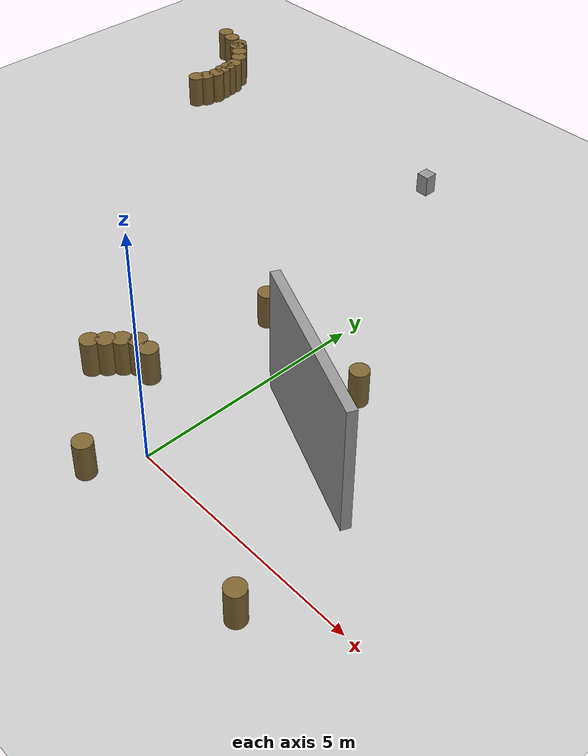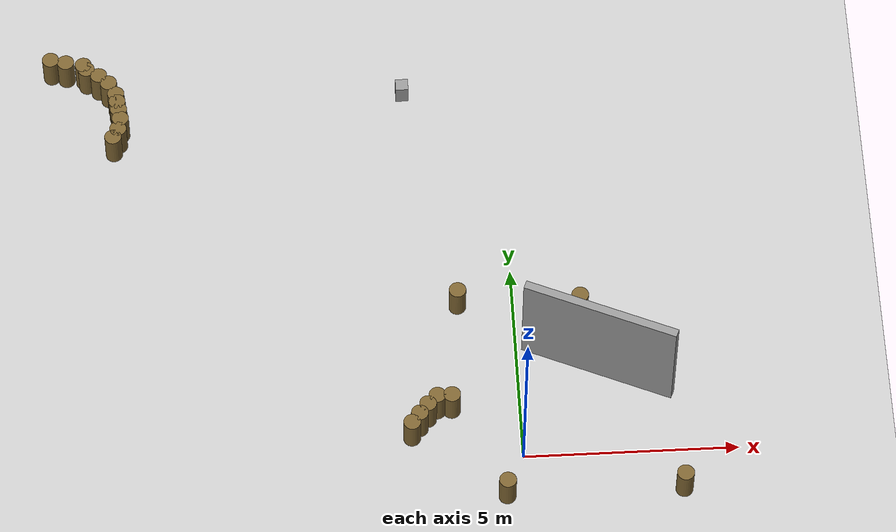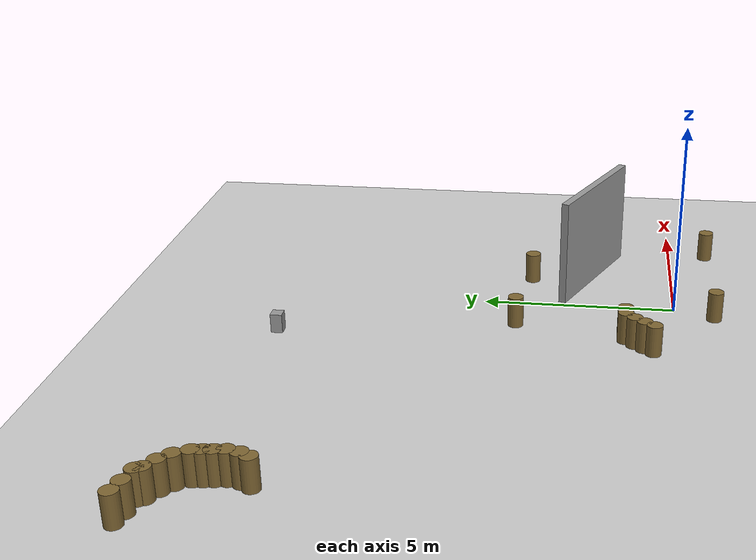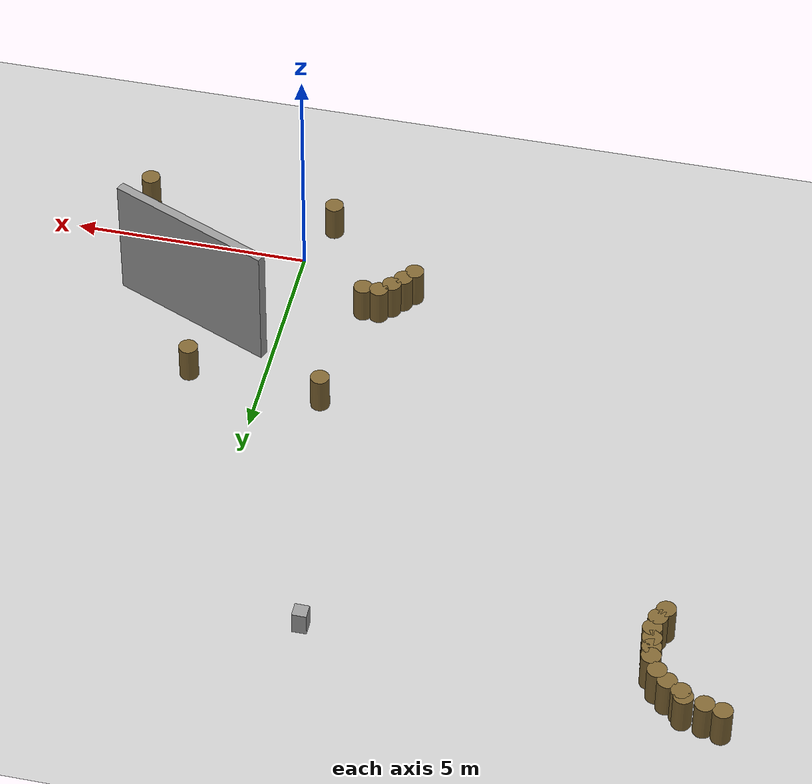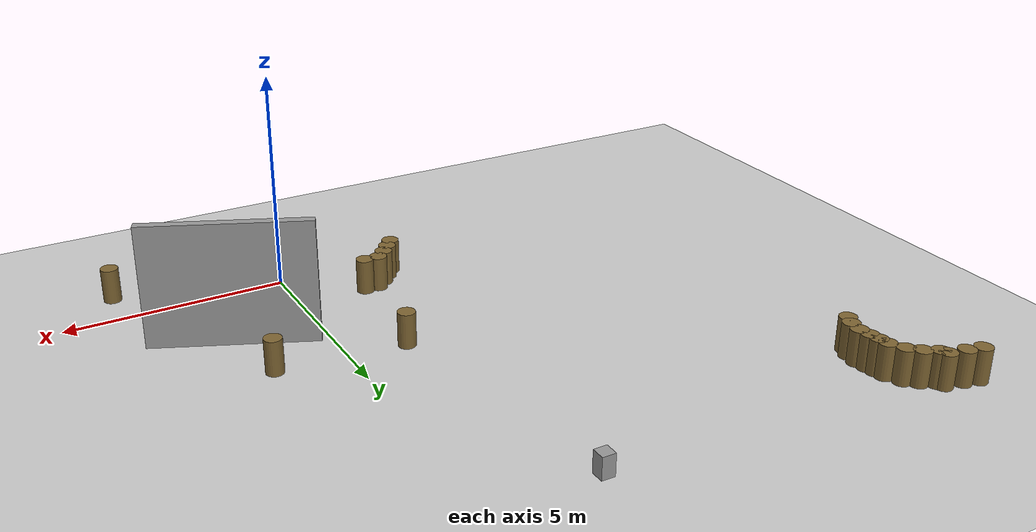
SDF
<sdf version="1.7">
 <world name="default">
  <model name="ground_plane">
   <static>1</static>
   <link name="link">
    <collision name="collision">
     <geometry><plane><normal>0 0 1</normal><size>100 100</size></plane></geometry>
     <surface><friction><ode><mu>100</mu><mu2>50</mu2></ode></friction></surface>
    </collision>
    <visual name="visual">
     <cast_shadows>0</cast_shadows>
     <geometry><plane><normal>0 0 1</normal><size>100 100</size></plane></geometry>
     <material>
      <script><uri>file://media/materials/scripts/gazebo.material</uri><name>Gazebo/Grey</name></script>
     </material>
    </visual>
   </link>
  </model>
  <model name="mini_cylinder_0_clone_0_clone_clone_clone_clone_0">
   <link name="link">
    <inertial>
     <mass>1</mass>
     <inertia><ixx>0.145833</ixx><ixy>0</ixy><ixz>0</ixz><iyy>0.145833</iyy><iyz>0</iyz><izz>0.125</izz></inertia>
    </inertial>
    <visual name="visual">
     <geometry><cylinder><radius>0.2</radius><length>0.8</length></cylinder></geometry>
     <material>
      <script><name>Gazebo/Grey</name><uri>file://media/materials/scripts/gazebo.material</uri></script>
      <shader type="vertex"><normal_map>__default__</normal_map></shader>
      <ambient>0.5 0.4 0.2 1</ambient>
      <diffuse>0.7 0.7 0.7 1</diffuse>
      <specular>0.01 0.01 0.01 1</specular>
      <emissive>0 0 0 1</emissive>
     </material>
    </visual>
    <collision name="collision">
     <geometry><cylinder><radius>0.2</radius><length>0.8</length></cylinder></geometry>
     <surface>
      <friction>
       <ode><mu>1</mu><mu2>1</mu2><fdir1>0 0 0</fdir1><slip1>0</slip1><slip2>0</slip2></ode>
       <torsional>
        <coefficient>1</coefficient>
        <patch_radius>0</patch_radius>
        <surface_radius>0</surface_radius>
        <use_patch_radius>1</use_patch_radius>
        <ode><slip>0</slip></ode>
       </torsional>
      </friction>
      <bounce><restitution_coefficient>0</restitution_coefficient><threshold>1e+06</threshold></bounce>
      <contact>
       <collide_without_contact>0</collide_without_contact>
       <collide_without_contact_bitmask>1</collide_without_contact_bitmask>
       <collide_bitmask>1</collide_bitmask>
       <ode>
        <soft_cfm>0</soft_cfm>
        <soft_erp>0.2</soft_erp>
        <kp>1e+13</kp>
        <kd>1</kd>
        <max_vel>0.01</max_vel>
        <min_depth>0</min_depth>
       </ode>
       <bullet>
        <split_impulse>1</split_impulse>
        <split_impulse_penetration_threshold>-0.01</split_impulse_penetration_threshold>
        <soft_cfm>0</soft_cfm>
        <soft_erp>0.2</soft_erp>
        <kp>1e+13</kp>
        <kd>1</kd>
       </bullet>
      </contact>
     </surface>
    </collision>
   </link>
   <static>1</static>
   <pose>-2.15189 1.08832 0.4 0 -0 0</pose>
  </model>
  <model name="mini_cylinder_0_clone_0_clone_clone_clone_clone_4">
   <link name="link">
    <inertial>
     <mass>1</mass>
     <inertia><ixx>0.145833</ixx><ixy>0</ixy><ixz>0</ixz><iyy>0.145833</iyy><iyz>0</iyz><izz>0.125</izz></inertia>
    </inertial>
    <visual name="visual">
     <geometry><cylinder><radius>0.2</radius><length>0.8</length></cylinder></geometry>
     <material>
      <script><name>Gazebo/Grey</name><uri>file://media/materials/scripts/gazebo.material</uri></script>
      <shader type="vertex"><normal_map>__default__</normal_map></shader>
      <ambient>0.5 0.4 0.2 1</ambient>
      <diffuse>0.7 0.7 0.7 1</diffuse>
      <specular>0.01 0.01 0.01 1</specular>
      <emissive>0 0 0 1</emissive>
     </material>
    </visual>
    <collision name="collision">
     <geometry><cylinder><radius>0.2</radius><length>0.8</length></cylinder></geometry>
     <surface>
      <friction>
       <ode><mu>1</mu><mu2>1</mu2><fdir1>0 0 0</fdir1><slip1>0</slip1><slip2>0</slip2></ode>
       <torsional>
        <coefficient>1</coefficient>
        <patch_radius>0</patch_radius>
        <surface_radius>0</surface_radius>
        <use_patch_radius>1</use_patch_radius>
        <ode><slip>0</slip></ode>
       </torsional>
      </friction>
      <bounce><restitution_coefficient>0</restitution_coefficient><threshold>1e+06</threshold></bounce>
      <contact>
       <collide_without_contact>0</collide_without_contact>
       <collide_without_contact_bitmask>1</collide_without_contact_bitmask>
       <collide_bitmask>1</collide_bitmask>
       <ode>
        <soft_cfm>0</soft_cfm>
        <soft_erp>0.2</soft_erp>
        <kp>1e+13</kp>
        <kd>1</kd>
        <max_vel>0.01</max_vel>
        <min_depth>0</min_depth>
       </ode>
       <bullet>
        <split_impulse>1</split_impulse>
        <split_impulse_penetration_threshold>-0.01</split_impulse_penetration_threshold>
        <soft_cfm>0</soft_cfm>
        <soft_erp>0.2</soft_erp>
        <kp>1e+13</kp>
        <kd>1</kd>
       </bullet>
      </contact>
     </surface>
    </collision>
   </link>
   <static>1</static>
   <pose>-1.92181 1.30291 0.4 0 -0 0</pose>
  </model>
  <model name="mini_cylinder_0_clone_0_clone_clone_clone_clone_10">
   <link name="link">
    <inertial>
     <mass>1</mass>
     <inertia><ixx>0.145833</ixx><ixy>0</ixy><ixz>0</ixz><iyy>0.145833</iyy><iyz>0</iyz><izz>0.125</izz></inertia>
    </inertial>
    <visual name="visual">
     <geometry><cylinder><radius>0.2</radius><length>0.8</length></cylinder></geometry>
     <material>
      <script><name>Gazebo/Grey</name><uri>file://media/materials/scripts/gazebo.material</uri></script>
      <shader type="vertex"><normal_map>__default__</normal_map></shader>
      <ambient>0.5 0.4 0.2 1</ambient>
      <diffuse>0.7 0.7 0.7 1</diffuse>
      <specular>0.01 0.01 0.01 1</specular>
      <emissive>0 0 0 1</emissive>
     </material>
    </visual>
    <collision name="collision">
     <geometry><cylinder><radius>0.2</radius><length>0.8</length></cylinder></geometry>
     <surface>
      <friction>
       <ode><mu>1</mu><mu2>1</mu2><fdir1>0 0 0</fdir1><slip1>0</slip1><slip2>0</slip2></ode>
       <torsional>
        <coefficient>1</coefficient>
        <patch_radius>0</patch_radius>
        <surface_radius>0</surface_radius>
        <use_patch_radius>1</use_patch_radius>
        <ode><slip>0</slip></ode>
       </torsional>
      </friction>
      <bounce><restitution_coefficient>0</restitution_coefficient><threshold>1e+06</threshold></bounce>
      <contact>
       <collide_without_contact>0</collide_without_contact>
       <collide_without_contact_bitmask>1</collide_without_contact_bitmask>
       <collide_bitmask>1</collide_bitmask>
       <ode>
        <soft_cfm>0</soft_cfm>
        <soft_erp>0.2</soft_erp>
        <kp>1e+13</kp>
        <kd>1</kd>
        <max_vel>0.01</max_vel>
        <min_depth>0</min_depth>
       </ode>
       <bullet>
        <split_impulse>1</split_impulse>
        <split_impulse_penetration_threshold>-0.01</split_impulse_penetration_threshold>
        <soft_cfm>0</soft_cfm>
        <soft_erp>0.2</soft_erp>
        <kp>1e+13</kp>
        <kd>1</kd>
       </bullet>
      </contact>
     </surface>
    </collision>
   </link>
   <static>1</static>
   <pose>3.64698 -1.03635 0.4 0 -0 0</pose>
  </model>
  <model name="mini_cylinder_0_clone_0_clone_clone_clone_clone_12">
   <link name="link">
    <inertial>
     <mass>1</mass>
     <inertia><ixx>0.145833</ixx><ixy>0</ixy><ixz>0</ixz><iyy>0.145833</iyy><iyz>0</iyz><izz>0.125</izz></inertia>
    </inertial>
    <visual name="visual">
     <geometry><cylinder><radius>0.2</radius><length>0.8</length></cylinder></geometry>
     <material>
      <script><name>Gazebo/Grey</name><uri>file://media/materials/scripts/gazebo.material</uri></script>
      <shader type="vertex"><normal_map>__default__</normal_map></shader>
      <ambient>0.5 0.4 0.2 1</ambient>
      <diffuse>0.7 0.7 0.7 1</diffuse>
      <specular>0.01 0.01 0.01 1</specular>
      <emissive>0 0 0 1</emissive>
     </material>
    </visual>
    <collision name="collision">
     <geometry><cylinder><radius>0.2</radius><length>0.8</length></cylinder></geometry>
     <surface>
      <friction>
       <ode><mu>1</mu><mu2>1</mu2><fdir1>0 0 0</fdir1><slip1>0</slip1><slip2>0</slip2></ode>
       <torsional>
        <coefficient>1</coefficient>
        <patch_radius>0</patch_radius>
        <surface_radius>0</surface_radius>
        <use_patch_radius>1</use_patch_radius>
        <ode><slip>0</slip></ode>
       </torsional>
      </friction>
      <bounce><restitution_coefficient>0</restitution_coefficient><threshold>1e+06</threshold></bounce>
      <contact>
       <collide_without_contact>0</collide_without_contact>
       <collide_without_contact_bitmask>1</collide_without_contact_bitmask>
       <collide_bitmask>1</collide_bitmask>
       <ode>
        <soft_cfm>0</soft_cfm>
        <soft_erp>0.2</soft_erp>
        <kp>1e+13</kp>
        <kd>1</kd>
        <max_vel>0.01</max_vel>
        <min_depth>0</min_depth>
       </ode>
       <bullet>
        <split_impulse>1</split_impulse>
        <split_impulse_penetration_threshold>-0.01</split_impulse_penetration_threshold>
        <soft_cfm>0</soft_cfm>
        <soft_erp>0.2</soft_erp>
        <kp>1e+13</kp>
        <kd>1</kd>
       </bullet>
      </contact>
     </surface>
    </collision>
   </link>
   <static>1</static>
   <pose>1.56031 3.83174 0.4 0 -0 0</pose>
  </model>
  <model name="mini_cylinder_0_clone_0_clone_clone_clone_clone_13">
   <link name="link">
    <inertial>
     <mass>1</mass>
     <inertia><ixx>0.145833</ixx><ixy>0</ixy><ixz>0</ixz><iyy>0.145833</iyy><iyz>0</iyz><izz>0.125</izz></inertia>
    </inertial>
    <visual name="visual">
     <geometry><cylinder><radius>0.2</radius><length>0.8</length></cylinder></geometry>
     <material>
      <script><name>Gazebo/Grey</name><uri>file://media/materials/scripts/gazebo.material</uri></script>
      <shader type="vertex"><normal_map>__default__</normal_map></shader>
      <ambient>0.5 0.4 0.2 1</ambient>
      <diffuse>0.7 0.7 0.7 1</diffuse>
      <specular>0.01 0.01 0.01 1</specular>
      <emissive>0 0 0 1</emissive>
     </material>
    </visual>
    <collision name="collision">
     <geometry><cylinder><radius>0.2</radius><length>0.8</length></cylinder></geometry>
     <surface>
      <friction>
       <ode><mu>1</mu><mu2>1</mu2><fdir1>0 0 0</fdir1><slip1>0</slip1><slip2>0</slip2></ode>
       <torsional>
        <coefficient>1</coefficient>
        <patch_radius>0</patch_radius>
        <surface_radius>0</surface_radius>
        <use_patch_radius>1</use_patch_radius>
        <ode><slip>0</slip></ode>
       </torsional>
      </friction>
      <bounce><restitution_coefficient>0</restitution_coefficient><threshold>1e+06</threshold></bounce>
      <contact>
       <collide_without_contact>0</collide_without_contact>
       <collide_without_contact_bitmask>1</collide_without_contact_bitmask>
       <collide_bitmask>1</collide_bitmask>
       <ode>
        <soft_cfm>0</soft_cfm>
        <soft_erp>0.2</soft_erp>
        <kp>1e+13</kp>
        <kd>1</kd>
        <max_vel>0.01</max_vel>
        <min_depth>0</min_depth>
       </ode>
       <bullet>
        <split_impulse>1</split_impulse>
        <split_impulse_penetration_threshold>-0.01</split_impulse_penetration_threshold>
        <soft_cfm>0</soft_cfm>
        <soft_erp>0.2</soft_erp>
        <kp>1e+13</kp>
        <kd>1</kd>
       </bullet>
      </contact>
     </surface>
    </collision>
   </link>
   <static>1</static>
   <pose>-1.29879 4.10222 0.4 0 -0 0</pose>
  </model>
  <model name="mini_cylinder_0_clone_0_clone_clone_clone_clone_3_clone_20_clone_67">
   <link name="link">
    <inertial>
     <mass>1</mass>
     <inertia><ixx>0.145833</ixx><ixy>0</ixy><ixz>0</ixz><iyy>0.145833</iyy><iyz>0</iyz><izz>0.125</izz></inertia>
    </inertial>
    <visual name="visual">
     <geometry><cylinder><radius>0.2</radius><length>0.8</length></cylinder></geometry>
     <material>
      <script><name>Gazebo/Grey</name><uri>file://media/materials/scripts/gazebo.material</uri></script>
      <shader type="vertex"><normal_map>__default__</normal_map></shader>
      <ambient>0.5 0.4 0.2 1</ambient>
      <diffuse>0.7 0.7 0.7 1</diffuse>
      <specular>0.01 0.01 0.01 1</specular>
      <emissive>0 0 0 1</emissive>
     </material>
    </visual>
    <collision name="collision">
     <geometry><cylinder><radius>0.2</radius><length>0.8</length></cylinder></geometry>
     <surface>
      <friction>
       <ode><mu>1</mu><mu2>1</mu2><fdir1>0 0 0</fdir1><slip1>0</slip1><slip2>0</slip2></ode>
       <torsional>
        <coefficient>1</coefficient>
        <patch_radius>0</patch_radius>
        <surface_radius>0</surface_radius>
        <use_patch_radius>1</use_patch_radius>
        <ode><slip>0</slip></ode>
       </torsional>
      </friction>
      <bounce><restitution_coefficient>0</restitution_coefficient><threshold>1e+06</threshold></bounce>
      <contact>
       <collide_without_contact>0</collide_without_contact>
       <collide_without_contact_bitmask>1</collide_without_contact_bitmask>
       <collide_bitmask>1</collide_bitmask>
       <ode>
        <soft_cfm>0</soft_cfm>
        <soft_erp>0.2</soft_erp>
        <kp>1e+13</kp>
        <kd>1</kd>
        <max_vel>0.01</max_vel>
        <min_depth>0</min_depth>
       </ode>
       <bullet>
        <split_impulse>1</split_impulse>
        <split_impulse_penetration_threshold>-0.01</split_impulse_penetration_threshold>
        <soft_cfm>0</soft_cfm>
        <soft_erp>0.2</soft_erp>
        <kp>1e+13</kp>
        <kd>1</kd>
       </bullet>
      </contact>
     </surface>
    </collision>
   </link>
   <static>1</static>
   <pose>-9.17055 10.0028 0.4 0 -0 0</pose>
  </model>
  <model name="mini_cylinder_0_clone_0_clone_clone_clone_clone_3_clone_20_clone_68">
   <link name="link">
    <inertial>
     <mass>1</mass>
     <inertia><ixx>0.145833</ixx><ixy>0</ixy><ixz>0</ixz><iyy>0.145833</iyy><iyz>0</iyz><izz>0.125</izz></inertia>
    </inertial>
    <visual name="visual">
     <geometry><cylinder><radius>0.2</radius><length>0.8</length></cylinder></geometry>
     <material>
      <script><name>Gazebo/Grey</name><uri>file://media/materials/scripts/gazebo.material</uri></script>
      <shader type="vertex"><normal_map>__default__</normal_map></shader>
      <ambient>0.5 0.4 0.2 1</ambient>
      <diffuse>0.7 0.7 0.7 1</diffuse>
      <specular>0.01 0.01 0.01 1</specular>
      <emissive>0 0 0 1</emissive>
     </material>
    </visual>
    <collision name="collision">
     <geometry><cylinder><radius>0.2</radius><length>0.8</length></cylinder></geometry>
     <surface>
      <friction>
       <ode><mu>1</mu><mu2>1</mu2><fdir1>0 0 0</fdir1><slip1>0</slip1><slip2>0</slip2></ode>
       <torsional>
        <coefficient>1</coefficient>
        <patch_radius>0</patch_radius>
        <surface_radius>0</surface_radius>
        <use_patch_radius>1</use_patch_radius>
        <ode><slip>0</slip></ode>
       </torsional>
      </friction>
      <bounce><restitution_coefficient>0</restitution_coefficient><threshold>1e+06</threshold></bounce>
      <contact>
       <collide_without_contact>0</collide_without_contact>
       <collide_without_contact_bitmask>1</collide_without_contact_bitmask>
       <collide_bitmask>1</collide_bitmask>
       <ode>
        <soft_cfm>0</soft_cfm>
        <soft_erp>0.2</soft_erp>
        <kp>1e+13</kp>
        <kd>1</kd>
        <max_vel>0.01</max_vel>
        <min_depth>0</min_depth>
       </ode>
       <bullet>
        <split_impulse>1</split_impulse>
        <split_impulse_penetration_threshold>-0.01</split_impulse_penetration_threshold>
        <soft_cfm>0</soft_cfm>
        <soft_erp>0.2</soft_erp>
        <kp>1e+13</kp>
        <kd>1</kd>
       </bullet>
      </contact>
     </surface>
    </collision>
   </link>
   <static>1</static>
   <pose>-9.33863 10.3265 0.4 0 -0 0</pose>
  </model>
  <model name="mini_cylinder_0_clone_0_clone_clone_clone_clone_3_clone_20_clone_69">
   <link name="link">
    <inertial>
     <mass>1</mass>
     <inertia><ixx>0.145833</ixx><ixy>0</ixy><ixz>0</ixz><iyy>0.145833</iyy><iyz>0</iyz><izz>0.125</izz></inertia>
    </inertial>
    <visual name="visual">
     <geometry><cylinder><radius>0.2</radius><length>0.8</length></cylinder></geometry>
     <material>
      <script><name>Gazebo/Grey</name><uri>file://media/materials/scripts/gazebo.material</uri></script>
      <shader type="vertex"><normal_map>__default__</normal_map></shader>
      <ambient>0.5 0.4 0.2 1</ambient>
      <diffuse>0.7 0.7 0.7 1</diffuse>
      <specular>0.01 0.01 0.01 1</specular>
      <emissive>0 0 0 1</emissive>
     </material>
    </visual>
    <collision name="collision">
     <geometry><cylinder><radius>0.2</radius><length>0.8</length></cylinder></geometry>
     <surface>
      <friction>
       <ode><mu>1</mu><mu2>1</mu2><fdir1>0 0 0</fdir1><slip1>0</slip1><slip2>0</slip2></ode>
       <torsional>
        <coefficient>1</coefficient>
        <patch_radius>0</patch_radius>
        <surface_radius>0</surface_radius>
        <use_patch_radius>1</use_patch_radius>
        <ode><slip>0</slip></ode>
       </torsional>
      </friction>
      <bounce><restitution_coefficient>0</restitution_coefficient><threshold>1e+06</threshold></bounce>
      <contact>
       <collide_without_contact>0</collide_without_contact>
       <collide_without_contact_bitmask>1</collide_without_contact_bitmask>
       <collide_bitmask>1</collide_bitmask>
       <ode>
        <soft_cfm>0</soft_cfm>
        <soft_erp>0.2</soft_erp>
        <kp>1e+13</kp>
        <kd>1</kd>
        <max_vel>0.01</max_vel>
        <min_depth>0</min_depth>
       </ode>
       <bullet>
        <split_impulse>1</split_impulse>
        <split_impulse_penetration_threshold>-0.01</split_impulse_penetration_threshold>
        <soft_cfm>0</soft_cfm>
        <soft_erp>0.2</soft_erp>
        <kp>1e+13</kp>
        <kd>1</kd>
       </bullet>
      </contact>
     </surface>
    </collision>
   </link>
   <static>1</static>
   <pose>-9.57017 10.5508 0.4 0 -0 0</pose>
  </model>
  <model name="mini_cylinder_0_clone_0_clone_clone_clone_clone_3_clone_20_clone_70">
   <link name="link">
    <inertial>
     <mass>1</mass>
     <inertia><ixx>0.145833</ixx><ixy>0</ixy><ixz>0</ixz><iyy>0.145833</iyy><iyz>0</iyz><izz>0.125</izz></inertia>
    </inertial>
    <visual name="visual">
     <geometry><cylinder><radius>0.2</radius><length>0.8</length></cylinder></geometry>
     <material>
      <script><name>Gazebo/Grey</name><uri>file://media/materials/scripts/gazebo.material</uri></script>
      <shader type="vertex"><normal_map>__default__</normal_map></shader>
      <ambient>0.5 0.4 0.2 1</ambient>
      <diffuse>0.7 0.7 0.7 1</diffuse>
      <specular>0.01 0.01 0.01 1</specular>
      <emissive>0 0 0 1</emissive>
     </material>
    </visual>
    <collision name="collision">
     <geometry><cylinder><radius>0.2</radius><length>0.8</length></cylinder></geometry>
     <surface>
      <friction>
       <ode><mu>1</mu><mu2>1</mu2><fdir1>0 0 0</fdir1><slip1>0</slip1><slip2>0</slip2></ode>
       <torsional>
        <coefficient>1</coefficient>
        <patch_radius>0</patch_radius>
        <surface_radius>0</surface_radius>
        <use_patch_radius>1</use_patch_radius>
        <ode><slip>0</slip></ode>
       </torsional>
      </friction>
      <bounce><restitution_coefficient>0</restitution_coefficient><threshold>1e+06</threshold></bounce>
      <contact>
       <collide_without_contact>0</collide_without_contact>
       <collide_without_contact_bitmask>1</collide_without_contact_bitmask>
       <collide_bitmask>1</collide_bitmask>
       <ode>
        <soft_cfm>0</soft_cfm>
        <soft_erp>0.2</soft_erp>
        <kp>1e+13</kp>
        <kd>1</kd>
        <max_vel>0.01</max_vel>
        <min_depth>0</min_depth>
       </ode>
       <bullet>
        <split_impulse>1</split_impulse>
        <split_impulse_penetration_threshold>-0.01</split_impulse_penetration_threshold>
        <soft_cfm>0</soft_cfm>
        <soft_erp>0.2</soft_erp>
        <kp>1e+13</kp>
        <kd>1</kd>
       </bullet>
      </contact>
     </surface>
    </collision>
   </link>
   <static>1</static>
   <pose>-9.93318 10.8706 0.4 0 -0 0</pose>
  </model>
  <model name="mini_cylinder_0_clone_0_clone_clone_clone_clone_3_clone_20_clone_71">
   <link name="link">
    <inertial>
     <mass>1</mass>
     <inertia><ixx>0.145833</ixx><ixy>0</ixy><ixz>0</ixz><iyy>0.145833</iyy><iyz>0</iyz><izz>0.125</izz></inertia>
    </inertial>
    <visual name="visual">
     <geometry><cylinder><radius>0.2</radius><length>0.8</length></cylinder></geometry>
     <material>
      <script><name>Gazebo/Grey</name><uri>file://media/materials/scripts/gazebo.material</uri></script>
      <shader type="vertex"><normal_map>__default__</normal_map></shader>
      <ambient>0.5 0.4 0.2 1</ambient>
      <diffuse>0.7 0.7 0.7 1</diffuse>
      <specular>0.01 0.01 0.01 1</specular>
      <emissive>0 0 0 1</emissive>
     </material>
    </visual>
    <collision name="collision">
     <geometry><cylinder><radius>0.2</radius><length>0.8</length></cylinder></geometry>
     <surface>
      <friction>
       <ode><mu>1</mu><mu2>1</mu2><fdir1>0 0 0</fdir1><slip1>0</slip1><slip2>0</slip2></ode>
       <torsional>
        <coefficient>1</coefficient>
        <patch_radius>0</patch_radius>
        <surface_radius>0</surface_radius>
        <use_patch_radius>1</use_patch_radius>
        <ode><slip>0</slip></ode>
       </torsional>
      </friction>
      <bounce><restitution_coefficient>0</restitution_coefficient><threshold>1e+06</threshold></bounce>
      <contact>
       <collide_without_contact>0</collide_without_contact>
       <collide_without_contact_bitmask>1</collide_without_contact_bitmask>
       <collide_bitmask>1</collide_bitmask>
       <ode>
        <soft_cfm>0</soft_cfm>
        <soft_erp>0.2</soft_erp>
        <kp>1e+13</kp>
        <kd>1</kd>
        <max_vel>0.01</max_vel>
        <min_depth>0</min_depth>
       </ode>
       <bullet>
        <split_impulse>1</split_impulse>
        <split_impulse_penetration_threshold>-0.01</split_impulse_penetration_threshold>
        <soft_cfm>0</soft_cfm>
        <soft_erp>0.2</soft_erp>
        <kp>1e+13</kp>
        <kd>1</kd>
       </bullet>
      </contact>
     </surface>
    </collision>
   </link>
   <static>1</static>
   <pose>-9.86597 10.7414 0.4 0 -0 0</pose>
  </model>
  <model name="mini_cylinder_0_clone_0_clone_clone_clone_clone_3_clone_20_clone_72">
   <link name="link">
    <inertial>
     <mass>1</mass>
     <inertia><ixx>0.145833</ixx><ixy>0</ixy><ixz>0</ixz><iyy>0.145833</iyy><iyz>0</iyz><izz>0.125</izz></inertia>
    </inertial>
    <visual name="visual">
     <geometry><cylinder><radius>0.2</radius><length>0.8</length></cylinder></geometry>
     <material>
      <script><name>Gazebo/Grey</name><uri>file://media/materials/scripts/gazebo.material</uri></script>
      <shader type="vertex"><normal_map>__default__</normal_map></shader>
      <ambient>0.5 0.4 0.2 1</ambient>
      <diffuse>0.7 0.7 0.7 1</diffuse>
      <specular>0.01 0.01 0.01 1</specular>
      <emissive>0 0 0 1</emissive>
     </material>
    </visual>
    <collision name="collision">
     <geometry><cylinder><radius>0.2</radius><length>0.8</length></cylinder></geometry>
     <surface>
      <friction>
       <ode><mu>1</mu><mu2>1</mu2><fdir1>0 0 0</fdir1><slip1>0</slip1><slip2>0</slip2></ode>
       <torsional>
        <coefficient>1</coefficient>
        <patch_radius>0</patch_radius>
        <surface_radius>0</surface_radius>
        <use_patch_radius>1</use_patch_radius>
        <ode><slip>0</slip></ode>
       </torsional>
      </friction>
      <bounce><restitution_coefficient>0</restitution_coefficient><threshold>1e+06</threshold></bounce>
      <contact>
       <collide_without_contact>0</collide_without_contact>
       <collide_without_contact_bitmask>1</collide_without_contact_bitmask>
       <collide_bitmask>1</collide_bitmask>
       <ode>
        <soft_cfm>0</soft_cfm>
        <soft_erp>0.2</soft_erp>
        <kp>1e+13</kp>
        <kd>1</kd>
        <max_vel>0.01</max_vel>
        <min_depth>0</min_depth>
       </ode>
       <bullet>
        <split_impulse>1</split_impulse>
        <split_impulse_penetration_threshold>-0.01</split_impulse_penetration_threshold>
        <soft_cfm>0</soft_cfm>
        <soft_erp>0.2</soft_erp>
        <kp>1e+13</kp>
        <kd>1</kd>
       </bullet>
      </contact>
     </surface>
    </collision>
   </link>
   <static>1</static>
   <pose>-10.3575 10.9616 0.4 0 -0 0</pose>
  </model>
  <model name="mini_cylinder_0_clone_0_clone_clone_clone_clone_3_clone_20_clone_73">
   <link name="link">
    <inertial>
     <mass>1</mass>
     <inertia><ixx>0.145833</ixx><ixy>0</ixy><ixz>0</ixz><iyy>0.145833</iyy><iyz>0</iyz><izz>0.125</izz></inertia>
    </inertial>
    <visual name="visual">
     <geometry><cylinder><radius>0.2</radius><length>0.8</length></cylinder></geometry>
     <material>
      <script><name>Gazebo/Grey</name><uri>file://media/materials/scripts/gazebo.material</uri></script>
      <shader type="vertex"><normal_map>__default__</normal_map></shader>
      <ambient>0.5 0.4 0.2 1</ambient>
      <diffuse>0.7 0.7 0.7 1</diffuse>
      <specular>0.01 0.01 0.01 1</specular>
      <emissive>0 0 0 1</emissive>
     </material>
    </visual>
    <collision name="collision">
     <geometry><cylinder><radius>0.2</radius><length>0.8</length></cylinder></geometry>
     <surface>
      <friction>
       <ode><mu>1</mu><mu2>1</mu2><fdir1>0 0 0</fdir1><slip1>0</slip1><slip2>0</slip2></ode>
       <torsional>
        <coefficient>1</coefficient>
        <patch_radius>0</patch_radius>
        <surface_radius>0</surface_radius>
        <use_patch_radius>1</use_patch_radius>
        <ode><slip>0</slip></ode>
       </torsional>
      </friction>
      <bounce><restitution_coefficient>0</restitution_coefficient><threshold>1e+06</threshold></bounce>
      <contact>
       <collide_without_contact>0</collide_without_contact>
       <collide_without_contact_bitmask>1</collide_without_contact_bitmask>
       <collide_bitmask>1</collide_bitmask>
       <ode>
        <soft_cfm>0</soft_cfm>
        <soft_erp>0.2</soft_erp>
        <kp>1e+13</kp>
        <kd>1</kd>
        <max_vel>0.01</max_vel>
        <min_depth>0</min_depth>
       </ode>
       <bullet>
        <split_impulse>1</split_impulse>
        <split_impulse_penetration_threshold>-0.01</split_impulse_penetration_threshold>
        <soft_cfm>0</soft_cfm>
        <soft_erp>0.2</soft_erp>
        <kp>1e+13</kp>
        <kd>1</kd>
       </bullet>
      </contact>
     </surface>
    </collision>
   </link>
   <static>1</static>
   <pose>-10.7169 11.0528 0.4 0 -0 0</pose>
  </model>
  <model name="mini_cylinder_0_clone_0_clone_clone_clone_clone_3_clone_20_clone_97">
   <link name="link">
    <inertial>
     <mass>1</mass>
     <inertia><ixx>0.145833</ixx><ixy>0</ixy><ixz>0</ixz><iyy>0.145833</iyy><iyz>0</iyz><izz>0.125</izz></inertia>
    </inertial>
    <visual name="visual">
     <geometry><cylinder><radius>0.2</radius><length>0.8</length></cylinder></geometry>
     <material>
      <script><name>Gazebo/Grey</name><uri>file://media/materials/scripts/gazebo.material</uri></script>
      <shader type="vertex"><normal_map>__default__</normal_map></shader>
      <ambient>0.5 0.4 0.2 1</ambient>
      <diffuse>0.7 0.7 0.7 1</diffuse>
      <specular>0.01 0.01 0.01 1</specular>
      <emissive>0 0 0 1</emissive>
     </material>
    </visual>
    <collision name="collision">
     <geometry><cylinder><radius>0.2</radius><length>0.8</length></cylinder></geometry>
     <surface>
      <friction>
       <ode><mu>1</mu><mu2>1</mu2><fdir1>0 0 0</fdir1><slip1>0</slip1><slip2>0</slip2></ode>
       <torsional>
        <coefficient>1</coefficient>
        <patch_radius>0</patch_radius>
        <surface_radius>0</surface_radius>
        <use_patch_radius>1</use_patch_radius>
        <ode><slip>0</slip></ode>
       </torsional>
      </friction>
      <bounce><restitution_coefficient>0</restitution_coefficient><threshold>1e+06</threshold></bounce>
      <contact>
       <collide_without_contact>0</collide_without_contact>
       <collide_without_contact_bitmask>1</collide_without_contact_bitmask>
       <collide_bitmask>1</collide_bitmask>
       <ode>
        <soft_cfm>0</soft_cfm>
        <soft_erp>0.2</soft_erp>
        <kp>1e+13</kp>
        <kd>1</kd>
        <max_vel>0.01</max_vel>
        <min_depth>0</min_depth>
       </ode>
       <bullet>
        <split_impulse>1</split_impulse>
        <split_impulse_penetration_threshold>-0.01</split_impulse_penetration_threshold>
        <soft_cfm>0</soft_cfm>
        <soft_erp>0.2</soft_erp>
        <kp>1e+13</kp>
        <kd>1</kd>
       </bullet>
      </contact>
     </surface>
    </collision>
   </link>
   <static>1</static>
   <pose>-9.1451 9.78077 0.4 0 -0 0</pose>
  </model>
  <model name="mini_cylinder_0_clone_0_clone_clone_clone_clone_3_clone_20_clone_98">
   <link name="link">
    <inertial>
     <mass>1</mass>
     <inertia><ixx>0.145833</ixx><ixy>0</ixy><ixz>0</ixz><iyy>0.145833</iyy><iyz>0</iyz><izz>0.125</izz></inertia>
    </inertial>
    <visual name="visual">
     <geometry><cylinder><radius>0.2</radius><length>0.8</length></cylinder></geometry>
     <material>
      <script><name>Gazebo/Grey</name><uri>file://media/materials/scripts/gazebo.material</uri></script>
      <shader type="vertex"><normal_map>__default__</normal_map></shader>
      <ambient>0.5 0.4 0.2 1</ambient>
      <diffuse>0.7 0.7 0.7 1</diffuse>
      <specular>0.01 0.01 0.01 1</specular>
      <emissive>0 0 0 1</emissive>
     </material>
    </visual>
    <collision name="collision">
     <geometry><cylinder><radius>0.2</radius><length>0.8</length></cylinder></geometry>
     <surface>
      <friction>
       <ode><mu>1</mu><mu2>1</mu2><fdir1>0 0 0</fdir1><slip1>0</slip1><slip2>0</slip2></ode>
       <torsional>
        <coefficient>1</coefficient>
        <patch_radius>0</patch_radius>
        <surface_radius>0</surface_radius>
        <use_patch_radius>1</use_patch_radius>
        <ode><slip>0</slip></ode>
       </torsional>
      </friction>
      <bounce><restitution_coefficient>0</restitution_coefficient><threshold>1e+06</threshold></bounce>
      <contact>
       <collide_without_contact>0</collide_without_contact>
       <collide_without_contact_bitmask>1</collide_without_contact_bitmask>
       <collide_bitmask>1</collide_bitmask>
       <ode>
        <soft_cfm>0</soft_cfm>
        <soft_erp>0.2</soft_erp>
        <kp>1e+13</kp>
        <kd>1</kd>
        <max_vel>0.01</max_vel>
        <min_depth>0</min_depth>
       </ode>
       <bullet>
        <split_impulse>1</split_impulse>
        <split_impulse_penetration_threshold>-0.01</split_impulse_penetration_threshold>
        <soft_cfm>0</soft_cfm>
        <soft_erp>0.2</soft_erp>
        <kp>1e+13</kp>
        <kd>1</kd>
       </bullet>
      </contact>
     </surface>
    </collision>
   </link>
   <static>1</static>
   <pose>-9.11435 9.55868 0.4 0 -0 0</pose>
  </model>
  <model name="mini_cylinder_0_clone_0_clone_clone_clone_clone_3_clone_20_clone_99">
   <link name="link">
    <inertial>
     <mass>1</mass>
     <inertia><ixx>0.145833</ixx><ixy>0</ixy><ixz>0</ixz><iyy>0.145833</iyy><iyz>0</iyz><izz>0.125</izz></inertia>
    </inertial>
    <visual name="visual">
     <geometry><cylinder><radius>0.2</radius><length>0.8</length></cylinder></geometry>
     <material>
      <script><name>Gazebo/Grey</name><uri>file://media/materials/scripts/gazebo.material</uri></script>
      <shader type="vertex"><normal_map>__default__</normal_map></shader>
      <ambient>0.5 0.4 0.2 1</ambient>
      <diffuse>0.7 0.7 0.7 1</diffuse>
      <specular>0.01 0.01 0.01 1</specular>
      <emissive>0 0 0 1</emissive>
     </material>
    </visual>
    <collision name="collision">
     <geometry><cylinder><radius>0.2</radius><length>0.8</length></cylinder></geometry>
     <surface>
      <friction>
       <ode><mu>1</mu><mu2>1</mu2><fdir1>0 0 0</fdir1><slip1>0</slip1><slip2>0</slip2></ode>
       <torsional>
        <coefficient>1</coefficient>
        <patch_radius>0</patch_radius>
        <surface_radius>0</surface_radius>
        <use_patch_radius>1</use_patch_radius>
        <ode><slip>0</slip></ode>
       </torsional>
      </friction>
      <bounce><restitution_coefficient>0</restitution_coefficient><threshold>1e+06</threshold></bounce>
      <contact>
       <collide_without_contact>0</collide_without_contact>
       <collide_without_contact_bitmask>1</collide_without_contact_bitmask>
       <collide_bitmask>1</collide_bitmask>
       <ode>
        <soft_cfm>0</soft_cfm>
        <soft_erp>0.2</soft_erp>
        <kp>1e+13</kp>
        <kd>1</kd>
        <max_vel>0.01</max_vel>
        <min_depth>0</min_depth>
       </ode>
       <bullet>
        <split_impulse>1</split_impulse>
        <split_impulse_penetration_threshold>-0.01</split_impulse_penetration_threshold>
        <soft_cfm>0</soft_cfm>
        <soft_erp>0.2</soft_erp>
        <kp>1e+13</kp>
        <kd>1</kd>
       </bullet>
      </contact>
     </surface>
    </collision>
   </link>
   <static>1</static>
   <pose>-9.07853 9.29885 0.4 0 -0 0</pose>
  </model>
  <model name="mini_cylinder_0_clone_0_clone_clone_clone_clone_3_clone_20_clone_100">
   <link name="link">
    <inertial>
     <mass>1</mass>
     <inertia><ixx>0.145833</ixx><ixy>0</ixy><ixz>0</ixz><iyy>0.145833</iyy><iyz>0</iyz><izz>0.125</izz></inertia>
    </inertial>
    <visual name="visual">
     <geometry><cylinder><radius>0.2</radius><length>0.8</length></cylinder></geometry>
     <material>
      <script><name>Gazebo/Grey</name><uri>file://media/materials/scripts/gazebo.material</uri></script>
      <shader type="vertex"><normal_map>__default__</normal_map></shader>
      <ambient>0.5 0.4 0.2 1</ambient>
      <diffuse>0.7 0.7 0.7 1</diffuse>
      <specular>0.01 0.01 0.01 1</specular>
      <emissive>0 0 0 1</emissive>
     </material>
    </visual>
    <collision name="collision">
     <geometry><cylinder><radius>0.2</radius><length>0.8</length></cylinder></geometry>
     <surface>
      <friction>
       <ode><mu>1</mu><mu2>1</mu2><fdir1>0 0 0</fdir1><slip1>0</slip1><slip2>0</slip2></ode>
       <torsional>
        <coefficient>1</coefficient>
        <patch_radius>0</patch_radius>
        <surface_radius>0</surface_radius>
        <use_patch_radius>1</use_patch_radius>
        <ode><slip>0</slip></ode>
       </torsional>
      </friction>
      <bounce><restitution_coefficient>0</restitution_coefficient><threshold>1e+06</threshold></bounce>
      <contact>
       <collide_without_contact>0</collide_without_contact>
       <collide_without_contact_bitmask>1</collide_without_contact_bitmask>
       <collide_bitmask>1</collide_bitmask>
       <ode>
        <soft_cfm>0</soft_cfm>
        <soft_erp>0.2</soft_erp>
        <kp>1e+13</kp>
        <kd>1</kd>
        <max_vel>0.01</max_vel>
        <min_depth>0</min_depth>
       </ode>
       <bullet>
        <split_impulse>1</split_impulse>
        <split_impulse_penetration_threshold>-0.01</split_impulse_penetration_threshold>
        <soft_cfm>0</soft_cfm>
        <soft_erp>0.2</soft_erp>
        <kp>1e+13</kp>
        <kd>1</kd>
       </bullet>
      </contact>
     </surface>
    </collision>
   </link>
   <static>1</static>
   <pose>-9.13853 9.0047 0.4 0 -0 0</pose>
  </model>
  <model name="mini_cylinder_0_clone_0_clone_clone_clone_clone_3_clone_20_clone_101">
   <link name="link">
    <inertial>
     <mass>1</mass>
     <inertia><ixx>0.145833</ixx><ixy>0</ixy><ixz>0</ixz><iyy>0.145833</iyy><iyz>0</iyz><izz>0.125</izz></inertia>
    </inertial>
    <visual name="visual">
     <geometry><cylinder><radius>0.2</radius><length>0.8</length></cylinder></geometry>
     <material>
      <script><name>Gazebo/Grey</name><uri>file://media/materials/scripts/gazebo.material</uri></script>
      <shader type="vertex"><normal_map>__default__</normal_map></shader>
      <ambient>0.5 0.4 0.2 1</ambient>
      <diffuse>0.7 0.7 0.7 1</diffuse>
      <specular>0.01 0.01 0.01 1</specular>
      <emissive>0 0 0 1</emissive>
     </material>
    </visual>
    <collision name="collision">
     <geometry><cylinder><radius>0.2</radius><length>0.8</length></cylinder></geometry>
     <surface>
      <friction>
       <ode><mu>1</mu><mu2>1</mu2><fdir1>0 0 0</fdir1><slip1>0</slip1><slip2>0</slip2></ode>
       <torsional>
        <coefficient>1</coefficient>
        <patch_radius>0</patch_radius>
        <surface_radius>0</surface_radius>
        <use_patch_radius>1</use_patch_radius>
        <ode><slip>0</slip></ode>
       </torsional>
      </friction>
      <bounce><restitution_coefficient>0</restitution_coefficient><threshold>1e+06</threshold></bounce>
      <contact>
       <collide_without_contact>0</collide_without_contact>
       <collide_without_contact_bitmask>1</collide_without_contact_bitmask>
       <collide_bitmask>1</collide_bitmask>
       <ode>
        <soft_cfm>0</soft_cfm>
        <soft_erp>0.2</soft_erp>
        <kp>1e+13</kp>
        <kd>1</kd>
        <max_vel>0.01</max_vel>
        <min_depth>0</min_depth>
       </ode>
       <bullet>
        <split_impulse>1</split_impulse>
        <split_impulse_penetration_threshold>-0.01</split_impulse_penetration_threshold>
        <soft_cfm>0</soft_cfm>
        <soft_erp>0.2</soft_erp>
        <kp>1e+13</kp>
        <kd>1</kd>
       </bullet>
      </contact>
     </surface>
    </collision>
   </link>
   <static>1</static>
   <pose>-9.26473 8.77411 0.4 0 -0 0</pose>
  </model>
  <model name="unit_box_0.3">
   <link name="link">
    <inertial>
     <mass>1</mass>
     <inertia>
      <ixx>0.166667</ixx>
      <ixy>0</ixy>
      <ixz>0</ixz>
      <iyy>0.166667</iyy>
      <iyz>0</iyz>
      <izz>0.166667</izz>
     </inertia>
    </inertial>
    <visual name="visual">
     <geometry><box><size>0.3 0.3 0.5</size></box></geometry>
     <material>
      <script><name>Gazebo/Grey</name><uri>file://media/materials/scripts/gazebo.material</uri></script>
      <shader type="pixel"><normal_map>__default__</normal_map></shader>
      <ambient>0.3 0.3 0.3 1</ambient>
      <diffuse>0.7 0.7 0.7 1</diffuse>
      <specular>0.01 0.01 0.01 1</specular>
      <emissive>0 0 0 1</emissive>
     </material>
    </visual>
    <collision name="collision">
     <geometry><box><size>0.3 0.3 0.5</size></box></geometry>
     <surface>
      <friction>
       <ode><mu>1</mu><mu2>1</mu2><fdir1>0 0 0</fdir1><slip1>0</slip1><slip2>0</slip2></ode>
       <torsional>
        <coefficient>1</coefficient>
        <patch_radius>0</patch_radius>
        <surface_radius>0</surface_radius>
        <use_patch_radius>1</use_patch_radius>
        <ode><slip>0</slip></ode>
       </torsional>
      </friction>
      <bounce><restitution_coefficient>0</restitution_coefficient><threshold>1e+06</threshold></bounce>
      <contact>
       <collide_without_contact>0</collide_without_contact>
       <collide_without_contact_bitmask>1</collide_without_contact_bitmask>
       <collide_bitmask>1</collide_bitmask>
       <ode>
        <soft_cfm>0</soft_cfm>
        <soft_erp>0.2</soft_erp>
        <kp>1e+13</kp>
        <kd>1</kd>
        <max_vel>0.01</max_vel>
        <min_depth>0</min_depth>
       </ode>
       <bullet>
        <split_impulse>1</split_impulse>
        <split_impulse_penetration_threshold>-0.01</split_impulse_penetration_threshold>
        <soft_cfm>0</soft_cfm>
        <soft_erp>0.2</soft_erp>
        <kp>1e+13</kp>
        <kd>1</kd>
       </bullet>
      </contact>
     </surface>
    </collision>
   </link>
   <static>0</static>
   <pose>-2.30171 10.1062 0.25 0 -0 0</pose>
  </model>
  <model name="grey_wall">
   <link name="link">
    <pose>-1.94652 0.268408 1.4 0 -0 0.200112</pose>
    <inertial>
     <inertia><ixx>0</ixx><ixy>0</ixy><ixz>0</ixz><iyy>0</iyy><iyz>0</iyz><izz>0</izz></inertia>
     <mass>0</mass>
    </inertial>
    <visual name="visual">
     <cast_shadows>0</cast_shadows>
     <geometry><box><size>3.70561 0.2 2.8</size></box></geometry>
     <material>
      <script>
       <uri>model://grey_wall/materials/scripts</uri>
       <uri>model://grey_wall/materials/textures</uri>
       <name>vrc/grey_wall</name>
      </script>
      <shader type="pixel"/>
     </material>
    </visual>
    <collision name="collision">
     <geometry><box><size>3.70561 0.2 2.8</size></box></geometry>
     <surface>
      <friction>
       <ode><mu>1</mu><mu2>1</mu2><fdir1>0 0 0</fdir1><slip1>0</slip1><slip2>0</slip2></ode>
       <torsional>
        <coefficient>1</coefficient>
        <patch_radius>0</patch_radius>
        <surface_radius>0</surface_radius>
        <use_patch_radius>1</use_patch_radius>
        <ode><slip>0</slip></ode>
       </torsional>
      </friction>
      <bounce><restitution_coefficient>0</restitution_coefficient><threshold>1e+06</threshold></bounce>
      <contact>
       <collide_without_contact>0</collide_without_contact>
       <collide_without_contact_bitmask>1</collide_without_contact_bitmask>
       <collide_bitmask>1</collide_bitmask>
       <ode>
        <soft_cfm>0</soft_cfm>
        <soft_erp>0.2</soft_erp>
        <kp>1e+13</kp>
        <kd>1</kd>
        <max_vel>0.01</max_vel>
        <min_depth>0</min_depth>
       </ode>
       <bullet>
        <split_impulse>1</split_impulse>
        <split_impulse_penetration_threshold>-0.01</split_impulse_penetration_threshold>
        <soft_cfm>0</soft_cfm>
        <soft_erp>0.2</soft_erp>
        <kp>1e+13</kp>
        <kd>1</kd>
       </bullet>
      </contact>
     </surface>
    </collision>
   </link>
   <static>1</static>
   <pose>3.30622 0.881973 0 0 0 -0.613111</pose>
  </model>
  <model name="mini_cylinder_0_clone_0_clone_clone_clone_clone_4_clone">
   <link name="link">
    <inertial>
     <mass>1</mass>
     <inertia><ixx>0.145833</ixx><ixy>0</ixy><ixz>0</ixz><iyy>0.145833</iyy><iyz>0</iyz><izz>0.125</izz></inertia>
    </inertial>
    <visual name="visual">
     <geometry><cylinder><radius>0.2</radius><length>0.8</length></cylinder></geometry>
     <material>
      <script><name>Gazebo/Grey</name><uri>file://media/materials/scripts/gazebo.material</uri></script>
      <shader type="vertex"><normal_map>__default__</normal_map></shader>
      <ambient>0.5 0.4 0.2 1</ambient>
      <diffuse>0.7 0.7 0.7 1</diffuse>
      <specular>0.01 0.01 0.01 1</specular>
      <emissive>0 0 0 1</emissive>
     </material>
    </visual>
    <collision name="collision">
     <geometry><cylinder><radius>0.2</radius><length>0.8</length></cylinder></geometry>
     <surface>
      <friction>
       <ode><mu>1</mu><mu2>1</mu2><fdir1>0 0 0</fdir1><slip1>0</slip1><slip2>0</slip2></ode>
       <torsional>
        <coefficient>1</coefficient>
        <patch_radius>0</patch_radius>
        <surface_radius>0</surface_radius>
        <use_patch_radius>1</use_patch_radius>
        <ode><slip>0</slip></ode>
       </torsional>
      </friction>
      <bounce><restitution_coefficient>0</restitution_coefficient><threshold>1e+06</threshold></bounce>
      <contact>
       <collide_without_contact>0</collide_without_contact>
       <collide_without_contact_bitmask>1</collide_without_contact_bitmask>
       <collide_bitmask>1</collide_bitmask>
       <ode>
        <soft_cfm>0</soft_cfm>
        <soft_erp>0.2</soft_erp>
        <kp>1e+13</kp>
        <kd>1</kd>
        <max_vel>0.01</max_vel>
        <min_depth>0</min_depth>
       </ode>
       <bullet>
        <split_impulse>1</split_impulse>
        <split_impulse_penetration_threshold>-0.01</split_impulse_penetration_threshold>
        <soft_cfm>0</soft_cfm>
        <soft_erp>0.2</soft_erp>
        <kp>1e+13</kp>
        <kd>1</kd>
       </bullet>
      </contact>
     </surface>
    </collision>
   </link>
   <static>1</static>
   <pose>-1.58368 1.30237 0.4 0 -0 0</pose>
  </model>
  <model name="mini_cylinder_0_clone_0_clone_clone_clone_clone_4_clone_0">
   <link name="link">
    <inertial>
     <mass>1</mass>
     <inertia><ixx>0.145833</ixx><ixy>0</ixy><ixz>0</ixz><iyy>0.145833</iyy><iyz>0</iyz><izz>0.125</izz></inertia>
    </inertial>
    <visual name="visual">
     <geometry><cylinder><radius>0.2</radius><length>0.8</length></cylinder></geometry>
     <material>
      <script><name>Gazebo/Grey</name><uri>file://media/materials/scripts/gazebo.material</uri></script>
      <shader type="vertex"><normal_map>__default__</normal_map></shader>
      <ambient>0.5 0.4 0.2 1</ambient>
      <diffuse>0.7 0.7 0.7 1</diffuse>
      <specular>0.01 0.01 0.01 1</specular>
      <emissive>0 0 0 1</emissive>
     </material>
    </visual>
    <collision name="collision">
     <geometry><cylinder><radius>0.2</radius><length>0.8</length></cylinder></geometry>
     <surface>
      <friction>
       <ode><mu>1</mu><mu2>1</mu2><fdir1>0 0 0</fdir1><slip1>0</slip1><slip2>0</slip2></ode>
       <torsional>
        <coefficient>1</coefficient>
        <patch_radius>0</patch_radius>
        <surface_radius>0</surface_radius>
        <use_patch_radius>1</use_patch_radius>
        <ode><slip>0</slip></ode>
       </torsional>
      </friction>
      <bounce><restitution_coefficient>0</restitution_coefficient><threshold>1e+06</threshold></bounce>
      <contact>
       <collide_without_contact>0</collide_without_contact>
       <collide_without_contact_bitmask>1</collide_without_contact_bitmask>
       <collide_bitmask>1</collide_bitmask>
       <ode>
        <soft_cfm>0</soft_cfm>
        <soft_erp>0.2</soft_erp>
        <kp>1e+13</kp>
        <kd>1</kd>
        <max_vel>0.01</max_vel>
        <min_depth>0</min_depth>
       </ode>
       <bullet>
        <split_impulse>1</split_impulse>
        <split_impulse_penetration_threshold>-0.01</split_impulse_penetration_threshold>
        <soft_cfm>0</soft_cfm>
        <soft_erp>0.2</soft_erp>
        <kp>1e+13</kp>
        <kd>1</kd>
       </bullet>
      </contact>
     </surface>
    </collision>
   </link>
   <static>1</static>
   <pose>-2.35368 0.85237 0.4 0 -0 0</pose>
  </model>
  <model name="mini_cylinder_0_clone_0_clone_clone_clone_clone_4_clone_1">
   <link name="link">
    <inertial>
     <mass>1</mass>
     <inertia><ixx>0.145833</ixx><ixy>0</ixy><ixz>0</ixz><iyy>0.145833</iyy><iyz>0</iyz><izz>0.125</izz></inertia>
    </inertial>
    <visual name="visual">
     <geometry><cylinder><radius>0.2</radius><length>0.8</length></cylinder></geometry>
     <material>
      <script><name>Gazebo/Grey</name><uri>file://media/materials/scripts/gazebo.material</uri></script>
      <shader type="vertex"><normal_map>__default__</normal_map></shader>
      <ambient>0.5 0.4 0.2 1</ambient>
      <diffuse>0.7 0.7 0.7 1</diffuse>
      <specular>0.01 0.01 0.01 1</specular>
      <emissive>0 0 0 1</emissive>
     </material>
    </visual>
    <collision name="collision">
     <geometry><cylinder><radius>0.2</radius><length>0.8</length></cylinder></geometry>
     <surface>
      <friction>
       <ode><mu>1</mu><mu2>1</mu2><fdir1>0 0 0</fdir1><slip1>0</slip1><slip2>0</slip2></ode>
       <torsional>
        <coefficient>1</coefficient>
        <patch_radius>0</patch_radius>
        <surface_radius>0</surface_radius>
        <use_patch_radius>1</use_patch_radius>
        <ode><slip>0</slip></ode>
       </torsional>
      </friction>
      <bounce><restitution_coefficient>0</restitution_coefficient><threshold>1e+06</threshold></bounce>
      <contact>
       <collide_without_contact>0</collide_without_contact>
       <collide_without_contact_bitmask>1</collide_without_contact_bitmask>
       <collide_bitmask>1</collide_bitmask>
       <ode>
        <soft_cfm>0</soft_cfm>
        <soft_erp>0.2</soft_erp>
        <kp>1e+13</kp>
        <kd>1</kd>
        <max_vel>0.01</max_vel>
        <min_depth>0</min_depth>
       </ode>
       <bullet>
        <split_impulse>1</split_impulse>
        <split_impulse_penetration_threshold>-0.01</split_impulse_penetration_threshold>
        <soft_cfm>0</soft_cfm>
        <soft_erp>0.2</soft_erp>
        <kp>1e+13</kp>
        <kd>1</kd>
       </bullet>
      </contact>
     </surface>
    </collision>
   </link>
   <static>1</static>
   <pose>-2.54368 0.61237 0.4 0 -0 0</pose>
  </model>
  <model name="mini_cylinder_0_clone_0_clone_clone_clone_clone_5_clone">
   <link name="link">
    <inertial>
     <mass>1</mass>
     <inertia><ixx>0.145833</ixx><ixy>0</ixy><ixz>0</ixz><iyy>0.145833</iyy><iyz>0</iyz><izz>0.125</izz></inertia>
    </inertial>
    <visual name="visual">
     <geometry><cylinder><radius>0.2</radius><length>0.8</length></cylinder></geometry>
     <material>
      <script><name>Gazebo/Grey</name><uri>file://media/materials/scripts/gazebo.material</uri></script>
      <shader type="vertex"><normal_map>__default__</normal_map></shader>
      <ambient>0.5 0.4 0.2 1</ambient>
      <diffuse>0.7 0.7 0.7 1</diffuse>
      <specular>0.01 0.01 0.01 1</specular>
      <emissive>0 0 0 1</emissive>
     </material>
    </visual>
    <collision name="collision">
     <geometry><cylinder><radius>0.2</radius><length>0.8</length></cylinder></geometry>
     <surface>
      <friction>
       <ode><mu>1</mu><mu2>1</mu2><fdir1>0 0 0</fdir1><slip1>0</slip1><slip2>0</slip2></ode>
       <torsional>
        <coefficient>1</coefficient>
        <patch_radius>0</patch_radius>
        <surface_radius>0</surface_radius>
        <use_patch_radius>1</use_patch_radius>
        <ode><slip>0</slip></ode>
       </torsional>
      </friction>
      <bounce><restitution_coefficient>0</restitution_coefficient><threshold>1e+06</threshold></bounce>
      <contact>
       <collide_without_contact>0</collide_without_contact>
       <collide_without_contact_bitmask>1</collide_without_contact_bitmask>
       <collide_bitmask>1</collide_bitmask>
       <ode>
        <soft_cfm>0</soft_cfm>
        <soft_erp>0.2</soft_erp>
        <kp>1e+13</kp>
        <kd>1</kd>
        <max_vel>0.01</max_vel>
        <min_depth>0</min_depth>
       </ode>
       <bullet>
        <split_impulse>1</split_impulse>
        <split_impulse_penetration_threshold>-0.01</split_impulse_penetration_threshold>
        <soft_cfm>0</soft_cfm>
        <soft_erp>0.2</soft_erp>
        <kp>1e+13</kp>
        <kd>1</kd>
       </bullet>
      </contact>
     </surface>
    </collision>
   </link>
   <static>1</static>
   <pose>-0.433679 -1.01763 0.4 0 -0 0</pose>
  </model>
 </world>
</sdf>
